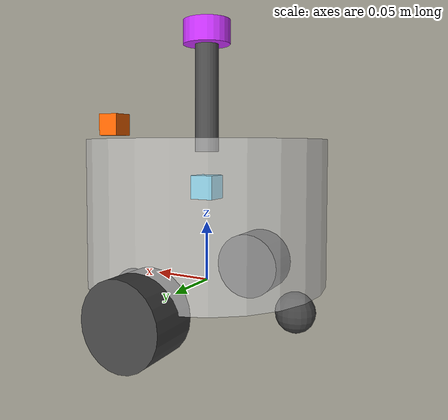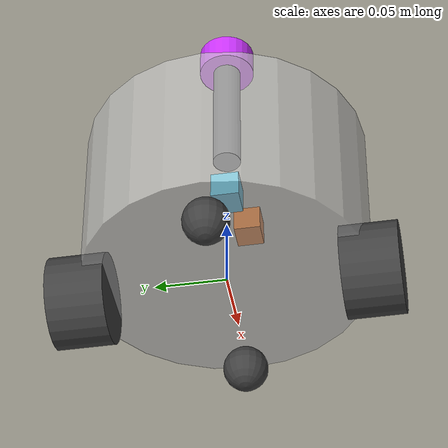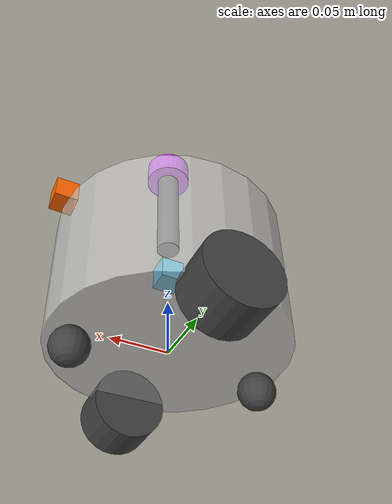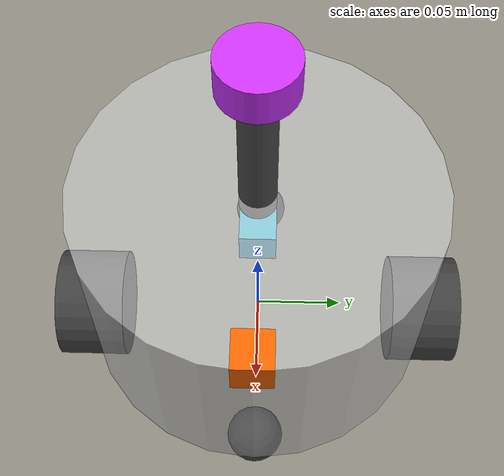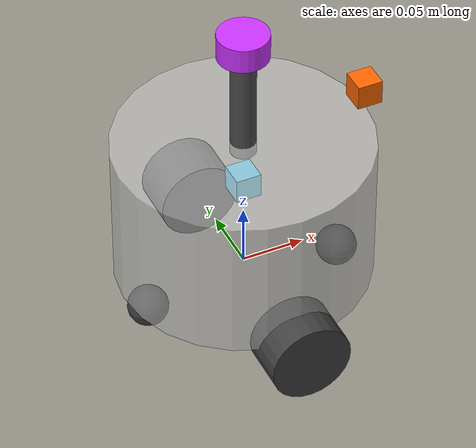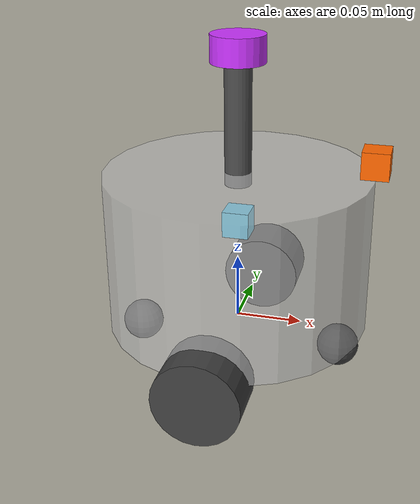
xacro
<?xml version="1.0"?>
<robot name="robot" xmlns:xacro="http://www.ros.org/wiki/xacro">

    <!-- 导航基准 -->
    <link name="base_footprint"/>
    <joint name="base_footprint_to_base_link" type="fixed">
        <origin xyz="0 0 0.06" rpy="0 0 0"/>  <!-- 补偿base_link离地高度（0.06m） -->
        <parent link="base_footprint"/>
        <child link="base_link"/>
    </joint>

    <!-- 机器人主体 base_link -->
    <link name="base_link">
        <visual>
            <origin xyz="0.0 0.0 0.0" rpy="0.0 0.0 0.0"/>
            <geometry>
                <cylinder radius="0.10" length="0.12"/>
            </geometry>
            <material name='light_gray'>
                <color rgba="0.8 0.8 0.8 0.6"/>
            </material>
        </visual>
        <!-- 碰撞模型 -->
        <collision>
            <origin xyz="0.0 0.0 0.0" rpy="0.0 0.0 0.0"/>
            <geometry>
                <cylinder radius="0.10" length="0.12"/>
            </geometry>
            <material name='light_gray'>
                <color rgba="0.8 0.8 0.8 0.6"/>
            </material>
        </collision>
        <!-- 质量和惯性 -->
        <inertial>
            <mass value="1.0"/>
            <inertia ixx="0.0037" ixy="0.0" ixz="0.0"
                     iyy="0.0037" iyz="0.0"
                     izz="0.0050"/>
        </inertial>
    </link>

    <!-- IMU传感器 -->
    <link name="imu_link">
        <visual>
            <origin xyz="0.0 0.0 0.0" rpy="0.0 0.0 0.0"/>
            <geometry>
                <box size="0.02 0.02 0.02"/>
            </geometry>
            <material name='sky_blue'>
                <color rgba="0.2 0.8 1.0 1.0"/>
            </material>
        </visual>
        <!-- 碰撞模型 -->
        <collision>
            <origin xyz="0.0 0.0 0.0" rpy="0.0 0.0 0.0"/>
            <geometry>
                <box size="0.02 0.02 0.02"/>
            </geometry>
            <material name='sky_blue'>
                <color rgba="0.2 0.8 1.0 1.0"/>
            </material>
        </collision>
        <!-- 质量和惯性 -->
        <inertial>
            <mass value="0.05"/>
            <inertia ixx="0.00000333" ixy="0.0" ixz="0.0"
                     iyy="0.00000333" iyz="0.0"
                     izz="0.00000333"/>
        </inertial>
    </link>

    <!-- 相机传感器 -->
    <link name="camera_link">
        <visual>
            <origin xyz="0.0 0.0 0.0" rpy="0.0 0.0 0.0"/>
            <geometry>
                <box size="0.02 0.02 0.02"/>
            </geometry>
            <material name='orange_red'>
                <color rgba="1.0 0.4 0.0 1.0"/>
            </material>
        </visual>
        <!-- 碰撞模型 -->
        <collision>
            <origin xyz="0.0 0.0 0.0" rpy="0.0 0.0 0.0"/>
            <geometry>
                <box size="0.02 0.02 0.02"/>
            </geometry>
            <material name='orange_red'>
                <color rgba="1.0 0.4 0.0 1.0"/>
            </material>
        </collision>
        <!-- 质量和惯性 -->
         <inertial>
            <mass value="0.1"/>
            <inertia ixx="0.00000667" ixy="0.0" ixz="0.0"
                     iyy="0.00000667" iyz="0.0"
                     izz="0.00000667"/>
         </inertial>
    </link>

    <!-- 雷达支撑杆 -->
    <link name="laser_stand_link">
        <visual>
            <origin xyz="0.0 0.0 0.0" rpy="0.0 0.0 0.0"/>
            <geometry>
                <cylinder radius="0.01" length="0.1"/>
            </geometry>
            <material name='dark_gray'>
                <color rgba="0.3 0.3 0.3 1.0"/>
            </material>
        </visual>
        <!-- 碰撞模型 -->
        <collision>
            <origin xyz="0.0 0.0 0.0" rpy="0.0 0.0 0.0"/>
            <geometry>
                <cylinder radius="0.01" length="0.1"/>
            </geometry>
            <material name='dark_gray'>
                <color rgba="0.3 0.3 0.3 1.0"/>
            </material>
        </collision>
        <!-- 质量和惯性 -->
         <inertial>
            <mass value="0.05"/>
            <inertia ixx="0.00000421" ixy="0.0" ixz="0.0"
                     iyy="0.00000421" iyz="0.0"
                     izz="0.00000025"/>
         </inertial>
    </link>

    <!-- 雷达传感器 -->
    <link name="laser_link">
        <visual>
            <origin xyz="0.0 0.0 0.0" rpy="0.0 0.0 0.0"/>
            <geometry>
                <cylinder radius="0.02" length="0.02"/>
            </geometry>
            <material name='violet'>
                <color rgba="0.8 0.2 1.0 1.0"/>
            </material>
        </visual>
        <!-- 碰撞模型 -->
        <collision>
            <origin xyz="0.0 0.0 0.0" rpy="0.0 0.0 0.0"/>
            <geometry>
                <cylinder radius="0.02" length="0.02"/>
            </geometry>
            <material name='violet'>
                <color rgba="0.8 0.2 1.0 1.0"/>
            </material>
        </collision>
        <!-- 质量和惯性 -->
         <inertial>
            <mass value="0.1"/>
            <inertia ixx="0.00000133" ixy="0.0" ixz="0.0"
                     iyy="0.00000133" iyz="0.0"
                     izz="0.00000200"/>
         </inertial>
    </link>

    <!-- GPS传感器 -->
    <link name="gps_link">
        <inertial>
            <mass value="0.01"/>
            <inertia ixx="0.000001" ixy="0.0" ixz="0.0"
                    iyy="0.000001" iyz="0.0"
                    izz="0.000001"/>
        </inertial>
        <visual>
            <geometry>
                <sphere radius="0.005"/>
            </geometry>
            <material name="red">
                <color rgba="1 0 0 0.8"/>
            </material>
        </visual>
    </link>

    <!-- 左轮子 -->
    <link name="left_wheel_link">
        <visual>
            <origin xyz="0.0 0.0 0.0" rpy="1.57079 0.0 0.0"/>
            <geometry>
                <cylinder radius="0.032" length="0.04"/>
            </geometry>
            <material name='tire_gray'>
                <color rgba="0.25 0.25 0.25 1.0"/>
            </material>
        </visual>
        <!-- 碰撞模型 -->
        <collision>
            <origin xyz="0.0 0.0 0.0" rpy="1.57079 0.0 0.0"/>
            <geometry>
                <cylinder radius="0.032" length="0.04"/>
            </geometry>
            <material name='tire_gray'>
                <color rgba="0.25 0.25 0.25 1.0"/>
            </material>
        </collision>
        <!-- 质量和惯性 -->
        <inertial>
            <mass value="0.05"/>
            <inertia ixx="0.00000731" ixy="0.0" ixz="0.0"
                     iyy="0.00000731" iyz="0.0"
                     izz="0.00000256"/>
        </inertial>
    </link>

    <!-- 右轮子 -->
    <link name="right_wheel_link">
        <visual>
            <origin xyz="0.0 0.0 0.0" rpy="1.57079 0.0 0.0"/>
            <geometry>
                <cylinder radius="0.032" length="0.04"/>
            </geometry>
            <material name='tire_gray'>
                <color rgba="0.25 0.25 0.25 1.0"/>
            </material>
        </visual>
        <!-- 碰撞模型 -->
        <collision>
            <origin xyz="0.0 0.0 0.0" rpy="1.57079 0.0 0.0"/>
            <geometry>
                <cylinder radius="0.032" length="0.04"/>
            </geometry>
            <material name='tire_gray'>
                <color rgba="0.25 0.25 0.25 1.0"/>
            </material>
        </collision>
        <!-- 质量和惯性 -->
        <inertial>
            <mass value="0.05"/>
            <inertia ixx="0.00000731" ixy="0.0" ixz="0.0"
                     iyy="0.00000731" iyz="0.0"
                     izz="0.00000256"/>
        </inertial>
    </link>

    <!-- 前万向轮 -->
    <link name="front_caster_link">
        <visual>
            <origin xyz="0.0 0.0 0.0" rpy="0.0 0.0 0.0"/>
            <geometry>
                <sphere radius="0.016"/>
            </geometry>
            <material name='tire_gray'>
                <color rgba="0.25 0.25 0.25 1.0"/>
            </material>
        </visual>
        <!-- 碰撞模型 -->
        <collision>
            <origin xyz="0.0 0.0 0.0" rpy="0.0 0.0 0.0"/>
            <geometry>
                <sphere radius="0.016"/>
            </geometry>
            <material name='tire_gray'>
                <color rgba="0.25 0.25 0.25 1.0"/>
            </material>
        </collision>
        <!-- 质量和惯性 -->
        <inertial>
            <mass value="0.05"/>
            <inertia ixx="0.000000102" ixy="0.0" ixz="0.0"
                     iyy="0.000000102" iyz="0.0"
                     izz="0.000000102"/>
        </inertial>
    </link>

    <!-- 后万向轮 -->
    <link name="back_caster_link">
        <visual>
            <origin xyz="0.0 0.0 0.0" rpy="0.0 0.0 0.0"/>
            <geometry>
                <sphere radius="0.016"/>
            </geometry>
            <material name='tire_gray'>
                <color rgba="0.25 0.25 0.25 1.0"/>
            </material>
        </visual>
        <!-- 碰撞模型 -->
        <collision>
            <origin xyz="0.0 0.0 0.0" rpy="0.0 0.0 0.0"/>
            <geometry>
                <sphere radius="0.016"/>
            </geometry>
            <material name='tire_gray'>
                <color rgba="0.25 0.25 0.25 1.0"/>
            </material>
        </collision>
        <!-- 质量和惯性 -->
        <inertial>
            <mass value="0.05"/>
            <inertia ixx="0.000000102" ixy="0.0" ixz="0.0"
                     iyy="0.000000102" iyz="0.0"
                     izz="0.000000102"/>
        </inertial>
    </link>

    <link name="camera_optical_link">
    </link>

    <!-- IMU固定到base_link -->
    <joint name="imu_joint" type="fixed">
        <origin xyz="0.0 0.0 0.02" rpy="0.0 0.0 0.0"/>
        <parent link="base_link"/>
        <child link="imu_link"/>
    </joint>

    <!-- 相机固定到base_link -->
    <joint name="camera_joint" type="fixed">
        <origin xyz="0.10 0.0 0.075" rpy="0.0 0.0 0.0"/>
        <parent link="base_link"/>
        <child link="camera_link"/>
    </joint>

    <!-- 雷达杆固定到base_link -->
    <joint name="laser_stand_joint" type="fixed">
        <origin xyz="0.0 0.0 0.10" rpy="0.0 0.0 0.0"/>
        <parent link="base_link"/>
        <child link="laser_stand_link"/>
    </joint>

    <!-- 雷达固定到雷达杆 -->
    <joint name="laser_joint" type="fixed">
        <origin xyz="0.0 0.0 0.05" rpy="0.0 0.0 0.0"/>
        <parent link="laser_stand_link"/>
        <child link="laser_link"/>
    </joint>

    <!-- 左轮子 -->
    <joint name="left_wheel_joint" type="continuous">
        <origin xyz="0.0 0.1 -0.065" rpy="0.0 0.0 0.0"/>
        <parent link="base_link"/>
        <child link="left_wheel_link"/>
        <axis xyz="0.0 1.0 0.0"/>
    </joint>

    <!-- 右轮子 -->
    <joint name="right_wheel_joint" type="continuous">
        <origin xyz="0.0 -0.1 -0.065" rpy="0.0 0.0 0.0"/>
        <parent link="base_link"/>
        <child link="right_wheel_link"/>
        <axis xyz="0.0 1.0 0.0"/>
    </joint>

    <!-- 前万向轮 -->
    <joint name="front_caster_joint" type="fixed">
        <origin xyz="0.08 0.0 -0.076" rpy="0.0 0.0 0.0"/>
        <parent link="base_link"/>
        <child link="front_caster_link"/>
    </joint>

    <!-- 后万向轮 -->
    <joint name="back_caster_joint" type="fixed">
        <origin xyz="-0.08 0.0 -0.076" rpy="0.0 0.0 0.0"/>
        <parent link="base_link"/>
        <child link="back_caster_link"/>
    </joint>

    <!-- 相机z轴朝向配置 -->
    <joint name="camera_optical_joint" type="fixed">
        <origin xyz="0.0 0.0 0.0" rpy="-1.5708 0.0 -1.5708"/>
        <parent link="camera_link"/>
        <child link="camera_optical_link"/>
    </joint>

    <!-- GPS固定到base_link -->
    <joint name="gps_joint" type="fixed">
        <origin xyz="0.0 0.0 0.05" rpy="0.0 0.0 0.0"/>
        <parent link="base_link"/>
        <child link="gps_link"/>
    </joint>

    <gazebo reference="base_link">
        <collision>false</collision>
        <material>Gazebo/White</material>
    </gazebo>

    <gazebo reference="imu_link">
        <material>Gazebo/SkyBlue</material>
    </gazebo>

    <gazebo reference="camera_link">
        <material>Gazebo/Orange</material>
    </gazebo>

    <gazebo reference="laser_stand_link">
        <material>Gazebo/DarkGrey</material>
    </gazebo>

    <gazebo reference="laser_link">
        <material>Gazebo/Purple</material>
    </gazebo>

    <gazebo reference="left_wheel_link">
        <material>Gazebo/Black</material>
        <mu1 value="20.0"/>
        <mu2 value="20.0"/>
        <kp value="10000000000.0"/>
        <kd value="1.0"/>
    </gazebo>

    <gazebo reference="right_wheel_link">
        <material>Gazebo/Black</material>
        <mu1 value="20.0"/>
        <mu2 value="20.0"/>
        <kp value="10000000000.0"/>
        <kd value="1.0"/>
    </gazebo>

    <gazebo reference="front_caster_link">
        <material>Gazebo/Black</material>
        <mu1 value="0.0"/>
        <mu2 value="0.0"/>
        <kp value="10000000000.0"/>
        <kd value="1.0"/>
    </gazebo>

    <gazebo reference="back_caster_link">
        <material>Gazebo/Black</material>
        <mu1 value="0.0"/>
        <mu2 value="0.0"/>
        <kp value="10000000000.0"/>
        <kd value="1.0"/>
    </gazebo>

<!-- Gazebo差速驱动插件 -->
    <ros2_control name="FishBotGazeboSystem" type="system">
        <hardware>
            <plugin>gazebo_ros2_control/GazeboSystem</plugin>
        </hardware>
        <joint name="left_wheel_joint">
            <command_interface name="velocity">
                <param name="min">-50</param>
                <param name="max">50</param>
            </command_interface>
            <command_interface name="effort">
                <param name="min">-0.1</param>
                <param name="max">0.1</param>
            </command_interface>
            <state_interface name="position" />
            <state_interface name="velocity" />
            <state_interface name="effort" />
        </joint>
        <joint name="right_wheel_joint">
            <command_interface name="velocity">
                <param name="min">-50</param>
                <param name="max">50</param>
            </command_interface>
            <command_interface name="effort">
                <param name="min">-0.1</param>
                <param name="max">0.1</param>
            </command_interface>
            <state_interface name="position" />
            <state_interface name="velocity" />
            <state_interface name="effort" />
        </joint>
    </ros2_control>
    <gazebo>
        <plugin filename="libgazebo_ros2_control.so" name="gazebo_ros2_control">
            <parameters>$(find gps_nav2)/config/fishbot_ros2_controller.yaml</parameters>
            <ros>
                <remapping>/fishbot_diff_drive_controller/cmd_vel_unstamped:=/cmd_vel</remapping>
                <remapping>/fishbot_diff_drive_controller/odom:=/odom</remapping>
            </ros>
        </plugin>
    </gazebo>

<!-- 激光雷达驱动插件 -->
    <gazebo reference="laser_link">
        <sensor name="laser_sensor" type="ray">
            <always_on>true</always_on>
            <visualize>true</visualize>
            <update_rate>10</update_rate>
            <ray>
                <scan>
                    <horizontal>
                    <samples>360</samples>  <!-- 360°全向扫描 -->
                    <resolution>1.000000</resolution>  <!-- 每个角度1个采样点 -->
                    <min_angle>0.000000</min_angle>
                    <max_angle>6.280000</max_angle>
                    </horizontal>
                </scan>
                <range>
                    <min>0.120000</min>  <!-- 最小测距，避免检测到自身 -->
                    <max>8</max>  <!-- 最大测距 -->
                    <resolution>0.015000</resolution>
                </range>
                <noise>
                    <type>gaussian</type>  <!-- 高斯噪声，模拟真实激光雷达 -->
                    <mean>0.0</mean>
                    <stddev>0.01</stddev>
                </noise>
            </ray>

            <plugin name="laserscan" filename="libgazebo_ros_ray_sensor.so">
                <ros>
                    <remapping>~/out:=scan</remapping>
                </ros>
            <output_type>sensor_msgs/LaserScan</output_type>
            <frame_name>laser_link</frame_name>
            </plugin>
        </sensor>
    </gazebo>

<!-- imu驱动插件 -->
    <gazebo reference="imu_link">
        <sensor name="imu_sensor" type="imu">
        <plugin filename="libgazebo_ros_imu_sensor.so" name="imu_plugin">
            <ros>
                <namespace>/</namespace>
                <remapping>~/out:=imu</remapping>
            </ros>
            <initial_orientation_as_reference>false</initial_orientation_as_reference>
        </plugin>
        <always_on>true</always_on>
        <update_rate>100</update_rate>
        <visualize>true</visualize>
        <imu>
            <angular_velocity>
                <x>
                    <noise type="gaussian">
                        <mean>0.0</mean>
                        <stddev>0.0</stddev>
                        <bias_mean>0.0</bias_mean>
                    </noise>
                </x>
                <y>
                    <noise type="gaussian">
                        <mean>0.0</mean>
                        <stddev>0.0</stddev>
                        <bias_mean>0.0</bias_mean>
                    </noise>
                </y>
                <z>
                    <noise type="gaussian">
                        <mean>0.0</mean>
                        <stddev>0.0</stddev>
                        <bias_mean>0.0</bias_mean>
                    </noise>
                </z>
            </angular_velocity>
            <linear_acceleration>
                <x>
                    <noise type="gaussian">
                        <mean>0.0</mean>
                        <stddev>0.0</stddev>
                        <bias_mean>0.0</bias_mean>
                        <bias_stddev>0.001</bias_stddev>
                    </noise>
                </x>
                <y>
                    <noise type="gaussian">
                        <mean>0.0</mean>
                        <stddev>0.0</stddev>
                        <bias_mean>0.0</bias_mean>
                        <bias_stddev>0.001</bias_stddev>
                    </noise>
                </y>
                <z>
                    <noise type="gaussian">
                        <mean>0.0</mean>
                        <stddev>0.0</stddev>
                        <bias_mean>0.0</bias_mean>
                        <bias_stddev>0.001</bias_stddev>
                    </noise>
                </z>
          </linear_acceleration>
        </imu>
      </sensor>
    </gazebo>

    <!-- 深度相机驱动 -->
    <gazebo reference="camera_link">
        <sensor type="depth" name="camera_sensor">
            <plugin name="depth_camera" filename="libgazebo_ros_camera.so">
                <ros>
                    <namespace>/</namespace>
                    <remapping>~/image_raw:=image_raw</remapping> <!-- 彩色图像话题 -->
                    <remapping>~/depth/image_raw:=depth/image_raw</remapping> <!-- 深度图像话题 -->
                    <remapping>~/camera_info:=camera_info</remapping> <!-- 相机内参话题 -->
                </ros>
                <frame_name>camera_optical_link</frame_name>
            </plugin>
            <always_on>true</always_on>
            <update_rate>10</update_rate>
            <camera name="camera">
                <horizontal_fov>1.5009831567</horizontal_fov>
                <image>
                    <width>800</width>
                    <height>600</height>
                    <format>R8G8B8</format>
                </image>
                <distortion>
                    <k1>0.0</k1>
                    <k2>0.0</k2>
                    <k3>0.0</k3>
                    <p1>0.0</p1>
                    <p2>0.0</p2>
                    <center>0.5 0.5</center>
                </distortion>
            </camera>
        </sensor>
    </gazebo>

    <!-- GPS驱动插件 -->
    <gazebo reference="gps_link">
        <material>Gazebo/Green</material>
        <sensor name="gps_sensor" type="gps">
            <always_on>true</always_on>
            <update_rate>30</update_rate>
            <gps>
                <position_sensing>
                    <horizontal>
                        <noise type="gaussian">
                            <mean>0.0</mean>
                            <stddev>0.0001</stddev>
                        </noise>
                    </horizontal>
                    <vertical>
                        <noise type="gaussian">
                            <mean>0.0</mean>
                            <stddev>0.0001</stddev>
                        </noise>
                    </vertical>
                </position_sensing>
                <velocity_sensing>
                    <horizontal>
                        <noise type="gaussian">
                            <mean>0.0</mean>
                            <stddev>0.0001</stddev>
                        </noise>
                    </horizontal>
                    <vertical>
                        <noise type="gaussian">
                            <mean>0.0</mean>
                            <stddev>0.0001</stddev>
                        </noise>
                    </vertical>
                </velocity_sensing>
            </gps>
            <plugin name="gps_plugin" filename="libgazebo_ros_gps_sensor.so">
                <ros>
                    <remapping>~/out:=gps/fix</remapping>
                </ros>
                <frame_name>gps_link</frame_name>
            </plugin>
        </sensor>
    </gazebo>
</robot>
